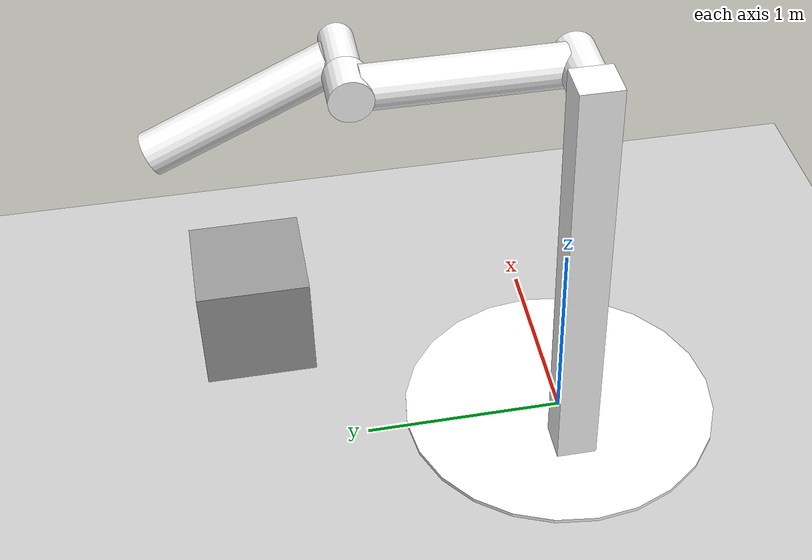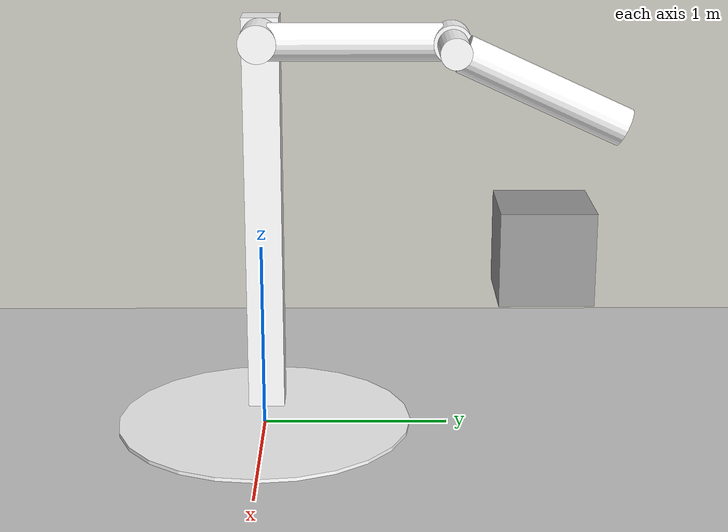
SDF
<?xml version="1.0"?>
<sdf version="1.4">
  <world name="default">
    <!-- Ground Plane -->
    <include>
      <uri>model://ground_plane</uri>
    </include>
    <!-- Light Source -->
    <light type="directional" name="sun">
      <cast_shadows>true</cast_shadows>
      <pose>0 0 5 0 0 0</pose>
      <diffuse>0.8 0.8 0.8 1</diffuse>
      <specular>0.2 0.2 0.2 1</specular>
      <attenuation>
        <range>1000</range>
        <constant>0.9</constant>
        <linear>0.01</linear>
        <quadratic>0.001</quadratic>
      </attenuation>
      <direction>1 1 -1</direction>
    </light>
		<model name='unit_box_1'>
      <pose>0 1.5 1 0 0 0</pose>
      <link name='link'>
				<collision name='collision'>
          <geometry>
            <box>
              <size>0.5 0.5 0.5</size>
            </box>
          </geometry>
          <max_contacts>10</max_contacts>
          <surface>
            <bounce/>
            <friction>
              <ode/>
            </friction>
            <contact>
              <ode/>
            </contact>
          </surface>
        </collision>
        <visual name='visual'>
          <geometry>
            <box>
              <size>0.5 0.5 0.5</size>
            </box>
          </geometry>
          <material>
            <script>
              <uri>file://media/materials/scripts/gazebo.material</uri>
              <name>Gazebo/Grey</name>
            </script>
          </material>
        </visual>
      </link>
      <static>true</static>
    </model>

		<include>
      <uri>model://double_pendulum_with_base</uri>
    </include>

    <plugin name="gazebo_rosmatlab_bridge" filename="libgazebo_rosmatlab_bridge.so">
      <joints>upper_joint;lower_joint</joints>
    </plugin>
  </world>
</sdf>

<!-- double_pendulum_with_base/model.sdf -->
<sdf version="1.5">
  <model name="double_pendulum_with_base">
    <link name="base">
      <inertial>
        <mass>100</mass>
      </inertial>
      <visual name="vis_plate_on_ground">
        <pose>0 0 0.01 0 0 0</pose>
        <geometry>
          <cylinder>
            <radius>0.8</radius>
            <length>0.02</length>
          </cylinder>
        </geometry>
        <material><diffuse>1 1 1 1</diffuse><specular>0.1 0.1 0.1 1</specular></material>
      </visual>
      <visual name="vis_pole">
        <pose>-0.275 0 1.1 0 0 0</pose>
        <geometry>
          <box>
            <size>0.2 0.2 2.2</size>
          </box>
        </geometry>
        <material><diffuse>1 1 1 1</diffuse><specular>0.1 0.1 0.1 1</specular></material>
      </visual>
      <collision name="col_plate_on_ground">
        <pose>0 0 0.01 0 0 0</pose>
        <geometry>
          <cylinder>
            <radius>0.8</radius>
            <length>0.02</length>
          </cylinder>
        </geometry>
      </collision>
      <collision name="col_pole">
        <pose>-0.275 0 1.1 0 0 0</pose>
        <geometry>
          <box>
            <size>0.2 0.2 2.2</size>
          </box>
        </geometry>
      </collision>
    </link>
    <!-- upper link, length 1, IC -90 degrees -->
    <link name="upper_link">
      <pose>0 0 2.1 -1.5708 0 0</pose>
      <self_collide>0</self_collide>
      <inertial>
        <pose>0 0 0.5 0 0 0</pose>
      </inertial>
      <visual name="vis_upper_joint">
        <pose>-0.05 0 0 0 1.5708 0</pose>
        <geometry>
          <cylinder>
            <radius>0.1</radius>
            <length>0.3</length>
          </cylinder>
        </geometry>
        <material><diffuse>1 1 1 1</diffuse><specular>0.1 0.1 0.1 1</specular></material>
      </visual>
      <visual name="vis_lower_joint">
        <pose>0 0 1.0 0 1.5708 0</pose>
        <geometry>
          <cylinder>
            <radius>0.1</radius>
            <length>0.2</length>
          </cylinder>
        </geometry>
        <material><diffuse>1 1 1 1</diffuse><specular>0.1 0.1 0.1 1</specular></material>
      </visual>
      <visual name="vis_cylinder">
        <pose>0 0 0.5 0 0 0</pose>
        <geometry>
          <cylinder>
            <radius>0.1</radius>
            <length>0.9</length>
          </cylinder>
        </geometry>
        <material><diffuse>1 1 1 1</diffuse><specular>0.1 0.1 0.1 1</specular></material>
      </visual>
      <collision name="col_upper_joint">
        <pose>-0.05 0 0 0 1.5708 0</pose>
        <geometry>
          <cylinder>
            <radius>0.1</radius>
            <length>0.3</length>
          </cylinder>
        </geometry>
      </collision>
      <collision name="col_lower_joint">
        <pose>0 0 1.0 0 1.5708 0</pose>
        <geometry>
          <cylinder>
            <radius>0.1</radius>
            <length>0.2</length>
          </cylinder>
        </geometry>
      </collision>
      <collision name="col_cylinder">
        <pose>0 0 0.5 0 0 0</pose>
        <geometry>
          <cylinder>
            <radius>0.1</radius>
            <length>0.9</length>
          </cylinder>
        </geometry>
      </collision>
    </link>
    <!-- lower link, length 1, IC ~-120 degrees more -->
    <link name="lower_link">
      <pose>0.25 1.0 2.1 -2 0 0</pose>
      <self_collide>0</self_collide>
      <inertial>
        <pose>0 0 0.5 0 0 0</pose>
      </inertial>
      <visual name="vis_lower_joint">
        <pose>0 0 0 0 1.5708 0</pose>
        <geometry>
          <cylinder>
            <radius>0.08</radius>
            <length>0.3</length>
          </cylinder>
        </geometry>
        <material><diffuse>1 1 1 1</diffuse><specular>0.1 0.1 0.1 1</specular></material>
      </visual>
      <visual name="vis_cylinder">
        <pose>0 0 0.5 0 0 0</pose>
        <geometry>
          <cylinder>
            <radius>0.1</radius>
            <length>0.9</length>
          </cylinder>
        </geometry>
        <material><diffuse>1 1 1 1</diffuse><specular>0.1 0.1 0.1 1</specular></material>
      </visual>
      <collision name="col_lower_joint">
        <pose>0 0 0 0 1.5708 0</pose>
        <geometry>
          <cylinder>
            <radius>0.08</radius>
            <length>0.3</length>
          </cylinder>
        </geometry>
      </collision>
      <collision name="col_cylinder">
        <pose>0 0 0.5 0 0 0</pose>
        <geometry>
          <cylinder>
            <radius>0.1</radius>
            <length>0.9</length>
          </cylinder>
        </geometry>
      </collision>
    </link>
    <!-- pin joint for upper link, at origin of upper link -->
    <joint name="upper_joint" type="revolute">
      <parent>base</parent>
      <child>upper_link</child>
      <axis>
        <xyz>1.0 0 0</xyz>
      </axis>
    </joint>
    <!-- pin joint for lower link, at origin of child link -->
    <joint name="lower_joint" type="revolute">
      <parent>upper_link</parent>
      <child>lower_link</child>
      <axis>
        <xyz>1.0 0 0</xyz>
      </axis>
    </joint>
  </model>
</sdf>
